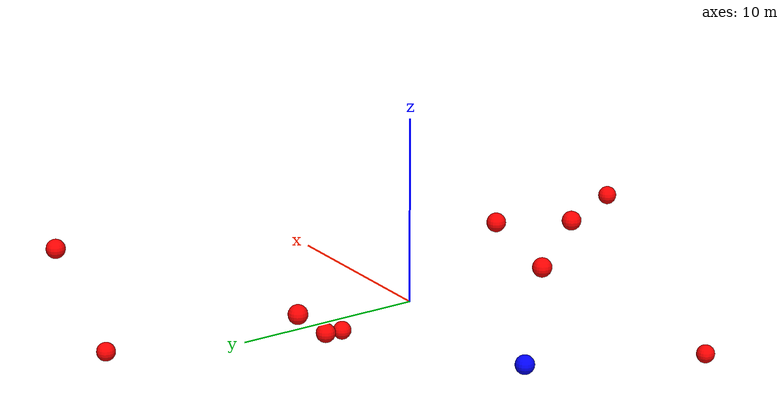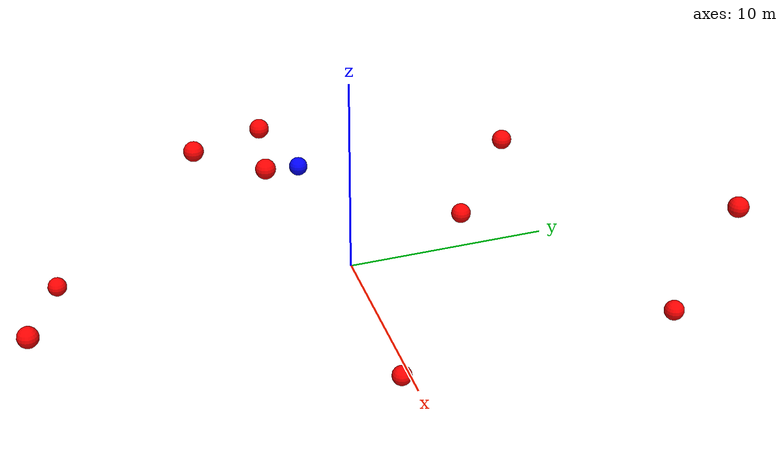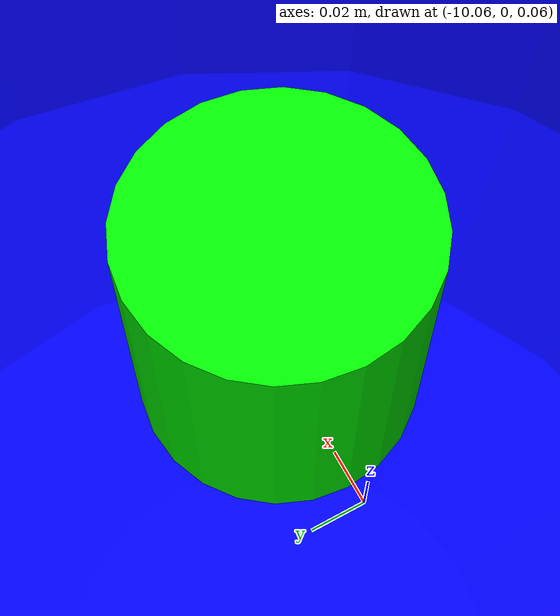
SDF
<?xml version="1.0" ?>
<sdf version="1.8">
    <world name="3d_world">
        <physics name="1ms" type="ode">
            <max_step_size>0.001</max_step_size>
            <real_time_factor>1.0</real_time_factor>
            <real_time_update_rate>1000.0</real_time_update_rate>
        </physics>
        <gravity>0 0 0</gravity>

        <plugin
            filename="gz-sim-physics-system"
            name="gz::sim::v8::systems::Physics">
        </plugin>
        <plugin
            filename="libignition-gazebo-user-commands-system.so"
            name="ignition::gazebo::systems::UserCommands">
        </plugin>
        <plugin
            filename="gz-sim-scene-broadcaster-system"
            name="gz::sim::systems::SceneBroadcaster">
        </plugin>
        <plugin
            filename="gz-sim-sensors-system"
            name="gz::sim::systems::Sensors">
            <render_engine>ogre2</render_engine>
        </plugin>

        <light type="directional" name="sun">
            <cast_shadows>true</cast_shadows>
            <pose>0 0 10 0 0 0</pose>
            <diffuse>0.8 0.8 0.8 1</diffuse>
            <specular>0.2 0.2 0.2 1</specular>
            <attenuation>
                <range>1000</range>
                <constant>0.9</constant>
                <linear>0.01</linear>
                <quadratic>0.001</quadratic>
            </attenuation>
            <direction>-0.5 0.1 -0.9</direction>
        </light>

        <!-- AGENTE -->
        <model name='agente' canonical_link='chassis'>
            <pose relative_to='world'>-10.0 0 0.0 0 0 0</pose>
            <link name='chassis'>
                <pose relative_to='__model__'>0.0 0 0.0 0 0 0</pose>
                <inertial>
                    <mass>1.14395</mass>
                    <inertia>
                        <ixx>0.095329</ixx>
                        <ixy>0</ixy>
                        <ixz>0</ixz>
                        <iyy>0.381317</iyy>
                        <iyz>0</iyz>
                        <izz>0.476646</izz>
                    </inertia>
                </inertial>
                <visual name='visual'>
                    <geometry>
                        <sphere>
                            <radius>0.5</radius>
                        </sphere>
                    </geometry>
                    <material>
                        <ambient>0.0 0.0 1.0 1</ambient>
                        <diffuse>0.0 0.0 1.0 1</diffuse>
                        <specular>0.0 0.0 1.0 1</specular>
                    </material>
                </visual>
                <collision name='collision'>
                    <geometry>
                        <sphere>
                            <radius>0.5</radius>
                        </sphere>
                    </geometry>
                </collision>
                <enable_gravity>false</enable_gravity>
            </link>

            <link name='lidar_link'>
                <pose relative_to='chassis'>0.0 0 0.1 0 0 0</pose>
                <inertial>
                    <mass>0.1</mass>
                    <inertia>
                        <ixx>0.000166667</ixx>
                        <iyy>0.000166667</iyy>
                        <izz>0.000166667</izz>
                    </inertia>
                </inertial>
                <collision name='collision'>
                    <geometry>
                        <cylinder>
                            <radius>0.05</radius>
                            <length>0.1</length>
                        </cylinder>
                    </geometry>
                </collision>
                <visual name='visual'>
                    <geometry>
                        <cylinder>
                            <radius>0.05</radius>
                            <length>0.1</length>
                        </cylinder>
                    </geometry>
                    <material>
                        <ambient>0.0 1.0 0.0 1</ambient>
                        <diffuse>0.0 1.0 0.0 1</diffuse>
                        <specular>0.0 1.0 0.0 1</specular>
                    </material>
                </visual>
                <sensor name="lidar" type="gpu_lidar">
                    <topic>scan</topic>
                    <update_rate>10</update_rate>
                    <lidar>
                        <scan>
                            <horizontal>
                                <samples>5000</samples>
                                <resolution>1</resolution>
                                <min_angle>-3.14159</min_angle>
                                <max_angle>3.14159</max_angle>
                            </horizontal>
                        </scan>
                        <range>
                            <min>0.1</min>
                            <max>10.0</max>
                            <resolution>0.01</resolution>
                        </range>
                    </lidar>
                    <visualize>true</visualize>
                    <always_on>true</always_on>
                    <update_rate>10</update_rate>
                    <pose_frame>lidar</pose_frame>
                </sensor>
                <enable_gravity>false</enable_gravity>
            </link>

            <joint name="lidar_joint" type="fixed">
                <parent>chassis</parent>
                <child>lidar_link</child>
            </joint>

            <plugin
                filename="ignition-gazebo-joint-state-publisher-system"
                name="ignition::gazebo::systems::JointStatePublisher">
            </plugin>
            <plugin
                filename="ignition-gazebo-odometry-publisher-system"
                name="ignition::gazebo::systems::OdometryPublisher">
                <dimensions>3</dimensions>
            </plugin>
            <plugin
                filename="ignition-gazebo-velocity-control-system"
                name="ignition::gazebo::systems::VelocityControl">
                <initial_linear>0.0 0 0</initial_linear>
                <initial_angular>0 0 0.0</initial_angular>
            </plugin>
            <plugin
                filename="libignition-gazebo-pose-publisher-system.so"
                name="ignition::gazebo::systems::PosePublisher">
                <topic>/agente/pose</topic>
                <frame_id>agente</frame_id>
                <update_rate>30</update_rate>
            </plugin>
        </model>

        <!-- OBSTACLE 1 -->
        <model name='obstacle_1' canonical_link='obstacle'>
            <static>false</static>
            <pose relative_to='world'>-4.53 9.63 2.98 0 0 0</pose>
            <link name='obstacle'>
                <pose relative_to='__model__'>0.0 0 0.0 0 0 0</pose>
                <visual name='visual'>
                    <geometry>
                        <sphere>
                            <radius>0.50</radius>
                        </sphere>
                    </geometry>
                    <material>
                        <ambient>1.0 0.0 0.0 1</ambient>
                        <diffuse>1.0 0.0 0.0 1</diffuse>
                        <specular>1.0 0.0 0.0 1</specular>
                    </material>
                </visual>
                <collision name='collision'>
                    <geometry>
                        <sphere>
                            <radius>0.50</radius>
                        </sphere>
                    </geometry>
                </collision>
                <enable_gravity>false</enable_gravity>
            </link>

            <plugin
                filename="ignition-gazebo-velocity-control-system"
                name="ignition::gazebo::systems::VelocityControl">
                <initial_linear>1.21 -1.52 -0.47</initial_linear>
                <initial_angular>0 0 0</initial_angular>
            </plugin>

            <plugin
                filename="ignition-gazebo-odometry-publisher-system"
                name="ignition::gazebo::systems::OdometryPublisher">
                <dimensions>3</dimensions>
            </plugin>
        </model>

        <!-- OBSTACLE 2 -->
        <model name='obstacle_2' canonical_link='obstacle'>
            <static>false</static>
            <pose relative_to='world'>-5.20 -6.46 4.76 0 0 0</pose>
            <link name='obstacle'>
                <pose relative_to='__model__'>0.0 0 0.0 0 0 0</pose>
                <visual name='visual'>
                    <geometry>
                        <sphere>
                            <radius>0.50</radius>
                        </sphere>
                    </geometry>
                    <material>
                        <ambient>1.0 0.0 0.0 1</ambient>
                        <diffuse>1.0 0.0 0.0 1</diffuse>
                        <specular>1.0 0.0 0.0 1</specular>
                    </material>
                </visual>
                <collision name='collision'>
                    <geometry>
                        <sphere>
                            <radius>0.50</radius>
                        </sphere>
                    </geometry>
                </collision>
                <enable_gravity>false</enable_gravity>
            </link>

            <plugin
                filename="ignition-gazebo-velocity-control-system"
                name="ignition::gazebo::systems::VelocityControl">
                <initial_linear>1.45 1.11 -0.82</initial_linear>
                <initial_angular>0 0 0</initial_angular>
            </plugin>

            <plugin
                filename="ignition-gazebo-odometry-publisher-system"
                name="ignition::gazebo::systems::OdometryPublisher">
                <dimensions>3</dimensions>
            </plugin>
        </model>

        <!-- OBSTACLE 3 -->
        <model name='obstacle_3' canonical_link='obstacle'>
            <static>false</static>
            <pose relative_to='world'>3.41 -15.78 1.83 0 0 0</pose>
            <link name='obstacle'>
                <pose relative_to='__model__'>0.0 0 0.0 0 0 0</pose>
                <visual name='visual'>
                    <geometry>
                        <sphere>
                            <radius>0.50</radius>
                        </sphere>
                    </geometry>
                    <material>
                        <ambient>1.0 0.0 0.0 1</ambient>
                        <diffuse>1.0 0.0 0.0 1</diffuse>
                        <specular>1.0 0.0 0.0 1</specular>
                    </material>
                </visual>
                <collision name='collision'>
                    <geometry>
                        <sphere>
                            <radius>0.50</radius>
                        </sphere>
                    </geometry>
                </collision>
                <enable_gravity>false</enable_gravity>
            </link>

            <plugin
                filename="ignition-gazebo-velocity-control-system"
                name="ignition::gazebo::systems::VelocityControl">
                <initial_linear>-0.03 1.99 -0.23</initial_linear>
                <initial_angular>0 0 0</initial_angular>
            </plugin>

            <plugin
                filename="ignition-gazebo-odometry-publisher-system"
                name="ignition::gazebo::systems::OdometryPublisher">
                <dimensions>3</dimensions>
            </plugin>
        </model>

        <!-- OBSTACLE 4 -->
        <model name='obstacle_4' canonical_link='obstacle'>
            <static>false</static>
            <pose relative_to='world'>-2.82 -3.43 4.56 0 0 0</pose>
            <link name='obstacle'>
                <pose relative_to='__model__'>0.0 0 0.0 0 0 0</pose>
                <visual name='visual'>
                    <geometry>
                        <sphere>
                            <radius>0.50</radius>
                        </sphere>
                    </geometry>
                    <material>
                        <ambient>1.0 0.0 0.0 1</ambient>
                        <diffuse>1.0 0.0 0.0 1</diffuse>
                        <specular>1.0 0.0 0.0 1</specular>
                    </material>
                </visual>
                <collision name='collision'>
                    <geometry>
                        <sphere>
                            <radius>0.50</radius>
                        </sphere>
                    </geometry>
                </collision>
                <enable_gravity>false</enable_gravity>
            </link>

            <plugin
                filename="ignition-gazebo-velocity-control-system"
                name="ignition::gazebo::systems::VelocityControl">
                <initial_linear>0.64 0.89 -1.18</initial_linear>
                <initial_angular>0 0 0</initial_angular>
            </plugin>

            <plugin
                filename="ignition-gazebo-odometry-publisher-system"
                name="ignition::gazebo::systems::OdometryPublisher">
                <dimensions>3</dimensions>
            </plugin>
        </model>

        <!-- OBSTACLE 5 -->
        <model name='obstacle_5' canonical_link='obstacle'>
            <static>false</static>
            <pose relative_to='world'>6.28 14.57 -1.60 0 0 0</pose>
            <link name='obstacle'>
                <pose relative_to='__model__'>0.0 0 0.0 0 0 0</pose>
                <visual name='visual'>
                    <geometry>
                        <sphere>
                            <radius>0.50</radius>
                        </sphere>
                    </geometry>
                    <material>
                        <ambient>1.0 0.0 0.0 1</ambient>
                        <diffuse>1.0 0.0 0.0 1</diffuse>
                        <specular>1.0 0.0 0.0 1</specular>
                    </material>
                </visual>
                <collision name='collision'>
                    <geometry>
                        <sphere>
                            <radius>0.50</radius>
                        </sphere>
                    </geometry>
                </collision>
                <enable_gravity>false</enable_gravity>
            </link>

            <plugin
                filename="ignition-gazebo-velocity-control-system"
                name="ignition::gazebo::systems::VelocityControl">
                <initial_linear>-0.30 -1.97 0.22</initial_linear>
                <initial_angular>0 0 0</initial_angular>
            </plugin>

            <plugin
                filename="ignition-gazebo-odometry-publisher-system"
                name="ignition::gazebo::systems::OdometryPublisher">
                <dimensions>3</dimensions>
            </plugin>
        </model>

        <!-- OBSTACLE 6 -->
        <model name='obstacle_6' canonical_link='obstacle'>
            <static>false</static>
            <pose relative_to='world'>-2.13 6.54 0.48 0 0 0</pose>
            <link name='obstacle'>
                <pose relative_to='__model__'>0.0 0 0.0 0 0 0</pose>
                <visual name='visual'>
                    <geometry>
                        <sphere>
                            <radius>0.50</radius>
                        </sphere>
                    </geometry>
                    <material>
                        <ambient>1.0 0.0 0.0 1</ambient>
                        <diffuse>1.0 0.0 0.0 1</diffuse>
                        <specular>1.0 0.0 0.0 1</specular>
                    </material>
                </visual>
                <collision name='collision'>
                    <geometry>
                        <sphere>
                            <radius>0.50</radius>
                        </sphere>
                    </geometry>
                </collision>
                <enable_gravity>false</enable_gravity>
            </link>

            <plugin
                filename="ignition-gazebo-velocity-control-system"
                name="ignition::gazebo::systems::VelocityControl">
                <initial_linear>0.84 -1.38 -0.10</initial_linear>
                <initial_angular>0 0 0</initial_angular>
            </plugin>

            <plugin
                filename="ignition-gazebo-odometry-publisher-system"
                name="ignition::gazebo::systems::OdometryPublisher">
                <dimensions>3</dimensions>
            </plugin>
        </model>

        <!-- OBSTACLE 7 -->
        <model name='obstacle_7' canonical_link='obstacle'>
            <static>false</static>
            <pose relative_to='world'>6.89 16.82 4.31 0 0 0</pose>
            <link name='obstacle'>
                <pose relative_to='__model__'>0.0 0 0.0 0 0 0</pose>
                <visual name='visual'>
                    <geometry>
                        <sphere>
                            <radius>0.50</radius>
                        </sphere>
                    </geometry>
                    <material>
                        <ambient>1.0 0.0 0.0 1</ambient>
                        <diffuse>1.0 0.0 0.0 1</diffuse>
                        <specular>1.0 0.0 0.0 1</specular>
                    </material>
                </visual>
                <collision name='collision'>
                    <geometry>
                        <sphere>
                            <radius>0.50</radius>
                        </sphere>
                    </geometry>
                </collision>
                <enable_gravity>false</enable_gravity>
            </link>

            <plugin
                filename="ignition-gazebo-velocity-control-system"
                name="ignition::gazebo::systems::VelocityControl">
                <initial_linear>-1.02 -1.67 -0.43</initial_linear>
                <initial_angular>0 0 0</initial_angular>
            </plugin>

            <plugin
                filename="ignition-gazebo-odometry-publisher-system"
                name="ignition::gazebo::systems::OdometryPublisher">
                <dimensions>3</dimensions>
            </plugin>
        </model>

        <!-- OBSTACLE 8 -->
        <model name='obstacle_8' canonical_link='obstacle'>
            <static>false</static>
            <pose relative_to='world'>-7.68 -13.80 -3.50 0 0 0</pose>
            <link name='obstacle'>
                <pose relative_to='__model__'>0.0 0 0.0 0 0 0</pose>
                <visual name='visual'>
                    <geometry>
                        <sphere>
                            <radius>0.50</radius>
                        </sphere>
                    </geometry>
                    <material>
                        <ambient>1.0 0.0 0.0 1</ambient>
                        <diffuse>1.0 0.0 0.0 1</diffuse>
                        <specular>1.0 0.0 0.0 1</specular>
                    </material>
                </visual>
                <collision name='collision'>
                    <geometry>
                        <sphere>
                            <radius>0.50</radius>
                        </sphere>
                    </geometry>
                </collision>
                <enable_gravity>false</enable_gravity>
            </link>

            <plugin
                filename="ignition-gazebo-velocity-control-system"
                name="ignition::gazebo::systems::VelocityControl">
                <initial_linear>0.51 1.87 0.48</initial_linear>
                <initial_angular>0 0 0</initial_angular>
            </plugin>

            <plugin
                filename="ignition-gazebo-odometry-publisher-system"
                name="ignition::gazebo::systems::OdometryPublisher">
                <dimensions>3</dimensions>
            </plugin>
        </model>

        <!-- OBSTACLE 9 -->
        <model name='obstacle_9' canonical_link='obstacle'>
            <static>false</static>
            <pose relative_to='world'>-7.93 -2.53 3.90 0 0 0</pose>
            <link name='obstacle'>
                <pose relative_to='__model__'>0.0 0 0.0 0 0 0</pose>
                <visual name='visual'>
                    <geometry>
                        <sphere>
                            <radius>0.50</radius>
                        </sphere>
                    </geometry>
                    <material>
                        <ambient>1.0 0.0 0.0 1</ambient>
                        <diffuse>1.0 0.0 0.0 1</diffuse>
                        <specular>1.0 0.0 0.0 1</specular>
                    </material>
                </visual>
                <collision name='collision'>
                    <geometry>
                        <sphere>
                            <radius>0.50</radius>
                        </sphere>
                    </geometry>
                </collision>
                <enable_gravity>false</enable_gravity>
            </link>

            <plugin
                filename="ignition-gazebo-velocity-control-system"
                name="ignition::gazebo::systems::VelocityControl">
                <initial_linear>1.73 0.54 -0.84</initial_linear>
                <initial_angular>0 0 0</initial_angular>
            </plugin>

            <plugin
                filename="ignition-gazebo-odometry-publisher-system"
                name="ignition::gazebo::systems::OdometryPublisher">
                <dimensions>3</dimensions>
            </plugin>
        </model>

        <!-- OBSTACLE 10 -->
        <model name='obstacle_10' canonical_link='obstacle'>
            <static>false</static>
            <pose relative_to='world'>5.14 0.92 -3.16 0 0 0</pose>
            <link name='obstacle'>
                <pose relative_to='__model__'>0.0 0 0.0 0 0 0</pose>
                <visual name='visual'>
                    <geometry>
                        <sphere>
                            <radius>0.50</radius>
                        </sphere>
                    </geometry>
                    <material>
                        <ambient>1.0 0.0 0.0 1</ambient>
                        <diffuse>1.0 0.0 0.0 1</diffuse>
                        <specular>1.0 0.0 0.0 1</specular>
                    </material>
                </visual>
                <collision name='collision'>
                    <geometry>
                        <sphere>
                            <radius>0.50</radius>
                        </sphere>
                    </geometry>
                </collision>
                <enable_gravity>false</enable_gravity>
            </link>

            <plugin
                filename="ignition-gazebo-velocity-control-system"
                name="ignition::gazebo::systems::VelocityControl">
                <initial_linear>-1.60 -0.25 0.85</initial_linear>
                <initial_angular>0 0 0</initial_angular>
            </plugin>

            <plugin
                filename="ignition-gazebo-odometry-publisher-system"
                name="ignition::gazebo::systems::OdometryPublisher">
                <dimensions>3</dimensions>
            </plugin>
        </model>

    </world>
</sdf>
